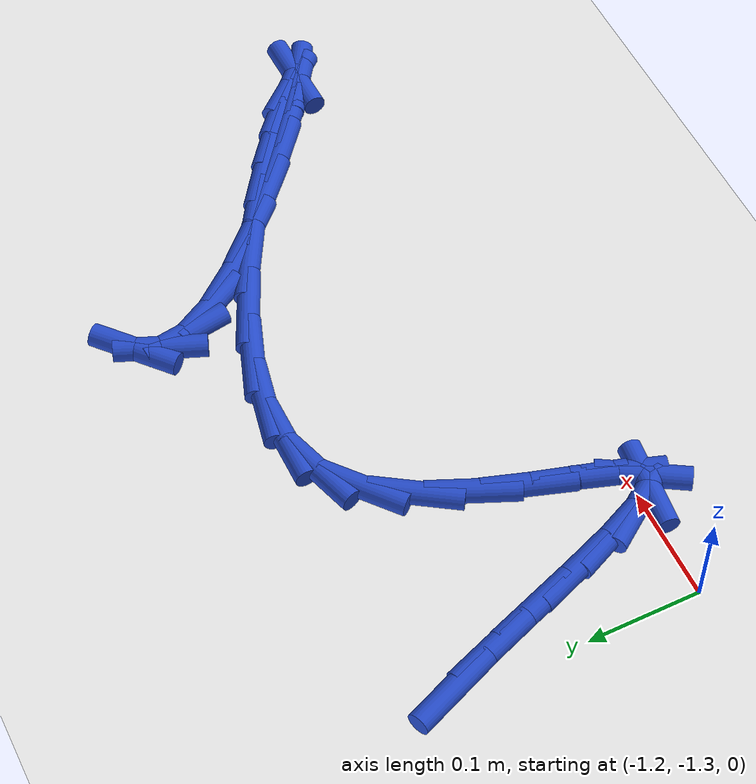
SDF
<sdf version="1.6">
 <world name="default">
  <model name="ground_plane">
   <static>1</static>
   <link name="link">
    <collision name="collision">
     <geometry><plane><normal>0 0 1</normal><size>100 100</size></plane></geometry>
     <surface><friction><ode><mu>100</mu><mu2>50</mu2></ode></friction></surface>
    </collision>
    <visual name="visual">
     <cast_shadows>0</cast_shadows>
     <geometry><plane><normal>0 0 1</normal><size>100 100</size></plane></geometry>
     <material>
      <script><uri>file://media/materials/scripts/gazebo.material</uri><name>Gazebo/WhiteGlow</name></script>
     </material>
    </visual>
   </link>
  </model>
  <model name="line">
   <link name="link_217">
    <pose>-1.194491666692365 -1.0847877047051684 0.01 0 1.57 -1.1850372113635659</pose>
    <collision name="collision">
     <geometry><cylinder><radius>0.01</radius><length>0.08</length></cylinder></geometry>
    </collision>
    <visual name="visual">
     <material>
      <script><name>Gazebo/Blue</name><uri>file://media/materials/scripts/gazebo.material</uri></script>
     </material>
     <geometry><cylinder><radius>0.01</radius><length>0.08</length></cylinder></geometry>
    </visual>
   </link>
   <link name="link_218">
    <pose>-1.1772679023593113 -1.1271996900055274 0.01 0 1.57 -1.2197623324122153</pose>
    <collision name="collision">
     <geometry><cylinder><radius>0.01</radius><length>0.08</length></cylinder></geometry>
    </collision>
    <visual name="visual">
     <material>
      <script><name>Gazebo/Blue</name><uri>file://media/materials/scripts/gazebo.material</uri></script>
     </material>
     <geometry><cylinder><radius>0.01</radius><length>0.08</length></cylinder></geometry>
    </visual>
   </link>
   <link name="link_219">
    <pose>-1.16043752466022 -1.173159125242487 0.01 0 1.57 -1.2274613425315035</pose>
    <collision name="collision">
     <geometry><cylinder><radius>0.01</radius><length>0.08</length></cylinder></geometry>
    </collision>
    <visual name="visual">
     <material>
      <script><name>Gazebo/Blue</name><uri>file://media/materials/scripts/gazebo.material</uri></script>
     </material>
     <geometry><cylinder><radius>0.01</radius><length>0.08</length></cylinder></geometry>
    </visual>
   </link>
   <link name="link_220">
    <pose>-1.1442284189729242 -1.2185000909439916 0.01 0 1.57 -1.2087604850873184</pose>
    <collision name="collision">
     <geometry><cylinder><radius>0.01</radius><length>0.08</length></cylinder></geometry>
    </collision>
    <visual name="visual">
     <material>
      <script><name>Gazebo/Blue</name><uri>file://media/materials/scripts/gazebo.material</uri></script>
     </material>
     <geometry><cylinder><radius>0.01</radius><length>0.08</length></cylinder></geometry>
    </visual>
   </link>
   <link name="link_221">
    <pose>-1.1288684706752554 -1.2590566676379862 0.01 0 1.57 -1.1463626179930717</pose>
    <collision name="collision">
     <geometry><cylinder><radius>0.01</radius><length>0.08</length></cylinder></geometry>
    </collision>
    <visual name="visual">
     <material>
      <script><name>Gazebo/Blue</name><uri>file://media/materials/scripts/gazebo.material</uri></script>
     </material>
     <geometry><cylinder><radius>0.01</radius><length>0.08</length></cylinder></geometry>
    </visual>
   </link>
   <link name="link_222">
    <pose>-1.114585565145046 -1.2906629358524155 0.01 0 1.57 -0.9588029223967175</pose>
    <collision name="collision">
     <geometry><cylinder><radius>0.01</radius><length>0.08</length></cylinder></geometry>
    </collision>
    <visual name="visual">
     <material>
      <script><name>Gazebo/Blue</name><uri>file://media/materials/scripts/gazebo.material</uri></script>
     </material>
     <geometry><cylinder><radius>0.01</radius><length>0.08</length></cylinder></geometry>
    </visual>
   </link>
   <link name="link_223">
    <pose>-1.1016075877601286 -1.3091529761152234 0.01 0 1.57 -0.10863987706359193</pose>
    <collision name="collision">
     <geometry><cylinder><radius>0.01</radius><length>0.08</length></cylinder></geometry>
    </collision>
    <visual name="visual">
     <material>
      <script><name>Gazebo/Blue</name><uri>file://media/materials/scripts/gazebo.material</uri></script>
     </material>
     <geometry><cylinder><radius>0.01</radius><length>0.08</length></cylinder></geometry>
    </visual>
   </link>
   <link name="link_224">
    <pose>-1.0901554213965128 -1.310402056071975 0.01 0 1.57 1.026828848636209</pose>
    <collision name="collision">
     <geometry><cylinder><radius>0.01</radius><length>0.08</length></cylinder></geometry>
    </collision>
    <visual name="visual">
     <material>
      <script><name>Gazebo/Blue</name><uri>file://media/materials/scripts/gazebo.material</uri></script>
     </material>
     <geometry><cylinder><radius>0.01</radius><length>0.08</length></cylinder></geometry>
    </visual>
   </link>
   <link name="link_225">
    <pose>-1.0799097914407216 -1.2934625264479371 0.01 0 1.57 1.247840818033054</pose>
    <collision name="collision">
     <geometry><cylinder><radius>0.01</radius><length>0.08</length></cylinder></geometry>
    </collision>
    <visual name="visual">
     <material>
      <script><name>Gazebo/Blue</name><uri>file://media/materials/scripts/gazebo.material</uri></script>
     </material>
     <geometry><cylinder><radius>0.01</radius><length>0.08</length></cylinder></geometry>
    </visual>
   </link>
   <link name="link_226">
    <pose>-1.0696367382366399 -1.262766706641893 0.01 0 1.57 1.284617433011417</pose>
    <collision name="collision">
     <geometry><cylinder><radius>0.01</radius><length>0.08</length></cylinder></geometry>
    </collision>
    <visual name="visual">
     <material>
      <script><name>Gazebo/Blue</name><uri>file://media/materials/scripts/gazebo.material</uri></script>
     </material>
     <geometry><cylinder><radius>0.01</radius><length>0.08</length></cylinder></geometry>
    </visual>
   </link>
   <link name="link_227">
    <pose>-1.0580138162517156 -1.2232673697837948 0.01 0 1.57 1.2522628477621986</pose>
    <collision name="collision">
     <geometry><cylinder><radius>0.01</radius><length>0.08</length></cylinder></geometry>
    </collision>
    <visual name="visual">
     <material>
      <script><name>Gazebo/Blue</name><uri>file://media/materials/scripts/gazebo.material</uri></script>
     </material>
     <geometry><cylinder><radius>0.01</radius><length>0.08</length></cylinder></geometry>
    </visual>
   </link>
   <link name="link_228">
    <pose>-1.0437185799533968 -1.179917289003594 0.01 0 1.57 1.162237143926164</pose>
    <collision name="collision">
     <geometry><cylinder><radius>0.01</radius><length>0.08</length></cylinder></geometry>
    </collision>
    <visual name="visual">
     <material>
      <script><name>Gazebo/Blue</name><uri>file://media/materials/scripts/gazebo.material</uri></script>
     </material>
     <geometry><cylinder><radius>0.01</radius><length>0.08</length></cylinder></geometry>
    </visual>
   </link>
   <link name="link_229">
    <pose>-1.0254285838091308 -1.1376692374312434 0.01 0 1.57 0.9928380109611735</pose>
    <collision name="collision">
     <geometry><cylinder><radius>0.01</radius><length>0.08</length></cylinder></geometry>
    </collision>
    <visual name="visual">
     <material>
      <script><name>Gazebo/Blue</name><uri>file://media/materials/scripts/gazebo.material</uri></script>
     </material>
     <geometry><cylinder><radius>0.01</radius><length>0.08</length></cylinder></geometry>
    </visual>
   </link>
   <link name="link_230">
    <pose>-1.0018213822863657 -1.1014759881966942 0.01 0 1.57 0.6952736544710002</pose>
    <collision name="collision">
     <geometry><cylinder><radius>0.01</radius><length>0.08</length></cylinder></geometry>
    </collision>
    <visual name="visual">
     <material>
      <script><name>Gazebo/Blue</name><uri>file://media/materials/scripts/gazebo.material</uri></script>
     </material>
     <geometry><cylinder><radius>0.01</radius><length>0.08</length></cylinder></geometry>
    </visual>
   </link>
   <link name="link_231">
    <pose>-0.9715898329539586 -1.0762555930593345 0.01 0 1.57 0.3090483570137543</pose>
    <collision name="collision">
     <geometry><cylinder><radius>0.01</radius><length>0.08</length></cylinder></geometry>
    </collision>
    <visual name="visual">
     <material>
      <script><name>Gazebo/Blue</name><uri>file://media/materials/scripts/gazebo.material</uri></script>
     </material>
     <geometry><cylinder><radius>0.01</radius><length>0.08</length></cylinder></geometry>
    </visual>
   </link>
   <link name="link_232">
    <pose>-0.9345299391620134 -1.0644231645092743 0.01 0 1.57 0.004060666898550713</pose>
    <collision name="collision">
     <geometry><cylinder><radius>0.01</radius><length>0.08</length></cylinder></geometry>
    </collision>
    <visual name="visual">
     <material>
      <script><name>Gazebo/Blue</name><uri>file://media/materials/scripts/gazebo.material</uri></script>
     </material>
     <geometry><cylinder><radius>0.01</radius><length>0.08</length></cylinder></geometry>
    </visual>
   </link>
   <link name="link_233">
    <pose>-0.8922633741329774 -1.0642515331244002 0.01 0 1.57 -0.20238049194628002</pose>
    <collision name="collision">
     <geometry><cylinder><radius>0.01</radius><length>0.08</length></cylinder></geometry>
    </collision>
    <visual name="visual">
     <material>
      <script><name>Gazebo/Blue</name><uri>file://media/materials/scripts/gazebo.material</uri></script>
     </material>
     <geometry><cylinder><radius>0.01</radius><length>0.08</length></cylinder></geometry>
    </visual>
   </link>
   <link name="link_234">
    <pose>-0.8465832174541025 -1.0736246237470384 0.01 0 1.57 -0.3413099402828602</pose>
    <collision name="collision">
     <geometry><cylinder><radius>0.01</radius><length>0.08</length></cylinder></geometry>
    </collision>
    <visual name="visual">
     <material>
      <script><name>Gazebo/Blue</name><uri>file://media/materials/scripts/gazebo.material</uri></script>
     </material>
     <geometry><cylinder><radius>0.01</radius><length>0.08</length></cylinder></geometry>
    </visual>
   </link>
   <link name="link_235">
    <pose>-0.7992825487126444 -1.0904263612195149 0.01 0 1.57 -0.438736804136365</pose>
    <collision name="collision">
     <geometry><cylinder><radius>0.01</radius><length>0.08</length></cylinder></geometry>
    </collision>
    <visual name="visual">
     <material>
      <script><name>Gazebo/Blue</name><uri>file://media/materials/scripts/gazebo.material</uri></script>
     </material>
     <geometry><cylinder><radius>0.01</radius><length>0.08</length></cylinder></geometry>
    </visual>
   </link>
   <link name="link_236">
    <pose>-0.752154447495858 -1.112540670384155 0.01 0 1.57 -0.5108225411224887</pose>
    <collision name="collision">
     <geometry><cylinder><radius>0.01</radius><length>0.08</length></cylinder></geometry>
    </collision>
    <visual name="visual">
     <material>
      <script><name>Gazebo/Blue</name><uri>file://media/materials/scripts/gazebo.material</uri></script>
     </material>
     <geometry><cylinder><radius>0.01</radius><length>0.08</length></cylinder></geometry>
    </visual>
   </link>
   <link name="link_237">
    <pose>-0.7069919933909983 -1.1378514760832847 0.01 0 1.57 -0.567474954991359</pose>
    <collision name="collision">
     <geometry><cylinder><radius>0.01</radius><length>0.08</length></cylinder></geometry>
    </collision>
    <visual name="visual">
     <material>
      <script><name>Gazebo/Blue</name><uri>file://media/materials/scripts/gazebo.material</uri></script>
     </material>
     <geometry><cylinder><radius>0.01</radius><length>0.08</length></cylinder></geometry>
    </visual>
   </link>
   <link name="link_238">
    <pose>-0.6655882659853202 -1.1642427031592306 0.01 0 1.57 -0.6155622053055159</pose>
    <collision name="collision">
     <geometry><cylinder><radius>0.01</radius><length>0.08</length></cylinder></geometry>
    </collision>
    <visual name="visual">
     <material>
      <script><name>Gazebo/Blue</name><uri>file://media/materials/scripts/gazebo.material</uri></script>
     </material>
     <geometry><cylinder><radius>0.01</radius><length>0.08</length></cylinder></geometry>
    </visual>
   </link>
   <link name="link_239">
    <pose>-0.6297363448660781 -1.189598276454318 0.01 0 1.57 -0.661735788299682</pose>
    <collision name="collision">
     <geometry><cylinder><radius>0.01</radius><length>0.08</length></cylinder></geometry>
    </collision>
    <visual name="visual">
     <material>
      <script><name>Gazebo/Blue</name><uri>file://media/materials/scripts/gazebo.material</uri></script>
     </material>
     <geometry><cylinder><radius>0.01</radius><length>0.08</length></cylinder></geometry>
    </visual>
   </link>
   <link name="link_240">
    <pose>-0.6012293096205271 -1.2118021208108727 0.01 0 1.57 -0.7184820481719113</pose>
    <collision name="collision">
     <geometry><cylinder><radius>0.01</radius><length>0.08</length></cylinder></geometry>
    </collision>
    <visual name="visual">
     <material>
      <script><name>Gazebo/Blue</name><uri>file://media/materials/scripts/gazebo.material</uri></script>
     </material>
     <geometry><cylinder><radius>0.01</radius><length>0.08</length></cylinder></geometry>
    </visual>
   </link>
   <link name="link_241">
    <pose>-0.581860239835922 -1.22873816107122 0.01 0 1.57 -0.847249396408354</pose>
    <collision name="collision">
     <geometry><cylinder><radius>0.01</radius><length>0.08</length></cylinder></geometry>
    </collision>
    <visual name="visual">
     <material>
      <script><name>Gazebo/Blue</name><uri>file://media/materials/scripts/gazebo.material</uri></script>
     </material>
     <geometry><cylinder><radius>0.01</radius><length>0.08</length></cylinder></geometry>
    </visual>
   </link>
   <link name="link_242">
    <pose>-0.5734222150995177 -1.238290322077687 0.01 0 1.57 0.01940915007232174</pose>
    <collision name="collision">
     <geometry><cylinder><radius>0.01</radius><length>0.08</length></cylinder></geometry>
    </collision>
    <visual name="visual">
     <material>
      <script><name>Gazebo/Blue</name><uri>file://media/materials/scripts/gazebo.material</uri></script>
     </material>
     <geometry><cylinder><radius>0.01</radius><length>0.08</length></cylinder></geometry>
    </visual>
   </link>
   <link name="link_243">
    <pose>-0.5776705131996103 -1.2383727882887463 0.01 0 1.57 -0.5347932758721894</pose>
    <collision name="collision">
     <geometry><cylinder><radius>0.01</radius><length>0.08</length></cylinder></geometry>
    </collision>
    <visual name="visual">
     <material>
      <script><name>Gazebo/Blue</name><uri>file://media/materials/scripts/gazebo.material</uri></script>
     </material>
     <geometry><cylinder><radius>0.01</radius><length>0.08</length></cylinder></geometry>
    </visual>
   </link>
   <link name="link_244">
    <pose>-0.5944304701772664 -1.2284446255724013 0.01 0 1.57 -0.6063552763168071</pose>
    <collision name="collision">
     <geometry><cylinder><radius>0.01</radius><length>0.08</length></cylinder></geometry>
    </collision>
    <visual name="visual">
     <material>
      <script><name>Gazebo/Blue</name><uri>file://media/materials/scripts/gazebo.material</uri></script>
     </material>
     <geometry><cylinder><radius>0.01</radius><length>0.08</length></cylinder></geometry>
    </visual>
   </link>
   <link name="link_245">
    <pose>-0.6207157733290523 -1.2102155707724718 0.01 0 1.57 -0.6472351311541015</pose>
    <collision name="collision">
     <geometry><cylinder><radius>0.01</radius><length>0.08</length></cylinder></geometry>
    </collision>
    <visual name="visual">
     <material>
      <script><name>Gazebo/Blue</name><uri>file://media/materials/scripts/gazebo.material</uri></script>
     </material>
     <geometry><cylinder><radius>0.01</radius><length>0.08</length></cylinder></geometry>
    </visual>
   </link>
   <link name="link_246">
    <pose>-0.6533181023124623 -1.1855730735963235 0.01 0 1.57 -0.6848964720648943</pose>
    <collision name="collision">
     <geometry><cylinder><radius>0.01</radius><length>0.08</length></cylinder></geometry>
    </collision>
    <visual name="visual">
     <material>
      <script><name>Gazebo/Blue</name><uri>file://media/materials/scripts/gazebo.material</uri></script>
     </material>
     <geometry><cylinder><radius>0.01</radius><length>0.08</length></cylinder></geometry>
    </visual>
   </link>
   <link name="link_247">
    <pose>-0.6890291367849904 -1.1564045837513235 0.01 0 1.57 -0.729028485795273</pose>
    <collision name="collision">
     <geometry><cylinder><radius>0.01</radius><length>0.08</length></cylinder></geometry>
    </collision>
    <visual name="visual">
     <material>
      <script><name>Gazebo/Blue</name><uri>file://media/materials/scripts/gazebo.material</uri></script>
     </material>
     <geometry><cylinder><radius>0.01</radius><length>0.08</length></cylinder></geometry>
    </visual>
   </link>
   <link name="link_248">
    <pose>-0.7246405564041297 -1.124597550944838 0.01 0 1.57 -0.7893240654405883</pose>
    <collision name="collision">
     <geometry><cylinder><radius>0.01</radius><length>0.08</length></cylinder></geometry>
    </collision>
    <visual name="visual">
     <material>
      <script><name>Gazebo/Blue</name><uri>file://media/materials/scripts/gazebo.material</uri></script>
     </material>
     <geometry><cylinder><radius>0.01</radius><length>0.08</length></cylinder></geometry>
    </visual>
   </link>
   <link name="link_249">
    <pose>-0.7569440408273762 -1.0920394248842313 0.01 0 1.57 -0.8835720020361455</pose>
    <collision name="collision">
     <geometry><cylinder><radius>0.01</radius><length>0.08</length></cylinder></geometry>
    </collision>
    <visual name="visual">
     <material>
      <script><name>Gazebo/Blue</name><uri>file://media/materials/scripts/gazebo.material</uri></script>
     </material>
     <geometry><cylinder><radius>0.01</radius><length>0.08</length></cylinder></geometry>
    </visual>
   </link>
   <link name="link_250">
    <pose>-0.7827312697122232 -1.06061765527687 0.01 0 1.57 -1.0560346839052455</pose>
    <collision name="collision">
     <geometry><cylinder><radius>0.01</radius><length>0.08</length></cylinder></geometry>
    </collision>
    <visual name="visual">
     <material>
      <script><name>Gazebo/Blue</name><uri>file://media/materials/scripts/gazebo.material</uri></script>
     </material>
     <geometry><cylinder><radius>0.01</radius><length>0.08</length></cylinder></geometry>
    </visual>
   </link>
   <link name="link_251">
    <pose>-0.7987939227161642 -1.03221969183012 0.01 0 1.57 -1.4112645896533254</pose>
    <collision name="collision">
     <geometry><cylinder><radius>0.01</radius><length>0.08</length></cylinder></geometry>
    </collision>
    <visual name="visual">
     <material>
      <script><name>Gazebo/Blue</name><uri>file://media/materials/scripts/gazebo.material</uri></script>
     </material>
     <geometry><cylinder><radius>0.01</radius><length>0.08</length></cylinder></geometry>
    </visual>
   </link>
   <link name="link_252">
    <pose>-0.8026359948651607 -1.00834091559657 0.01 0 1.57 1.1921906278100012</pose>
    <collision name="collision">
     <geometry><cylinder><radius>0.01</radius><length>0.08</length></cylinder></geometry>
    </collision>
    <visual name="visual">
     <material>
      <script><name>Gazebo/Blue</name><uri>file://media/materials/scripts/gazebo.material</uri></script>
     </material>
     <geometry><cylinder><radius>0.01</radius><length>0.08</length></cylinder></geometry>
    </visual>
   </link>
   <link name="link_253">
    <pose>-0.7948528119734156 -0.9887751945669314 0.01 0 1.57 0.7248602973947083</pose>
    <collision name="collision">
     <geometry><cylinder><radius>0.01</radius><length>0.08</length></cylinder></geometry>
    </collision>
    <visual name="visual">
     <material>
      <script><name>Gazebo/Blue</name><uri>file://media/materials/scripts/gazebo.material</uri></script>
     </material>
     <geometry><cylinder><radius>0.01</radius><length>0.08</length></cylinder></geometry>
    </visual>
   </link>
  </model>
 </world>
</sdf>
